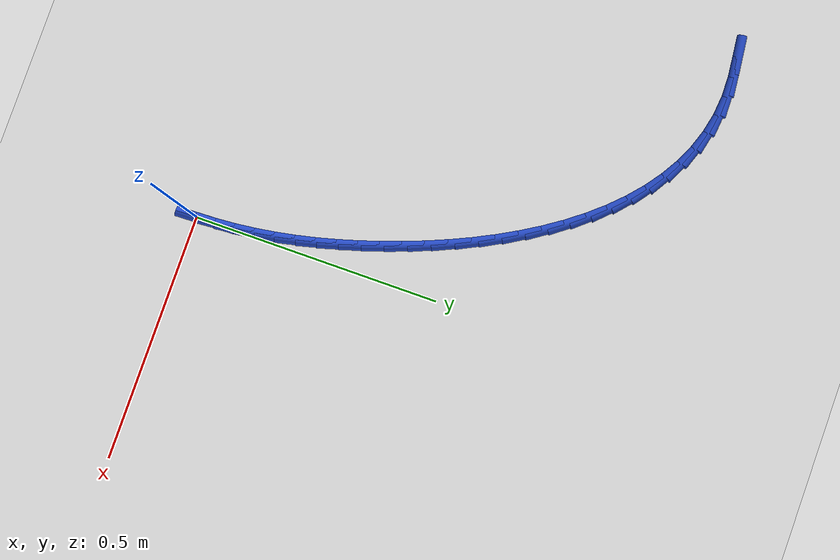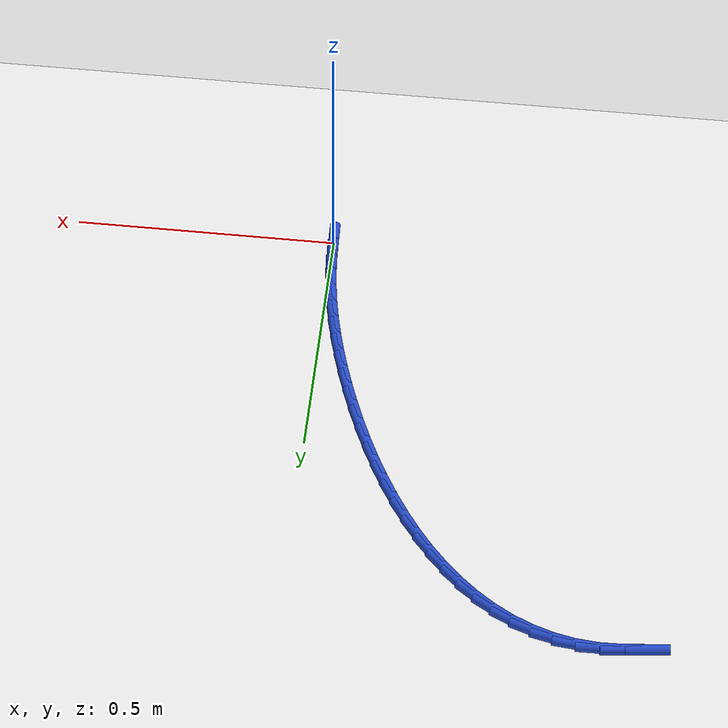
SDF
<sdf version="1.6">
 <world name="default">
  <model name="ground_plane">
   <static>1</static>
   <link name="link">
    <collision name="collision">
     <geometry><plane><normal>0 0 1</normal><size>100 100</size></plane></geometry>
     <surface><friction><ode><mu>100</mu><mu2>50</mu2></ode></friction></surface>
    </collision>
    <visual name="visual">
     <cast_shadows>0</cast_shadows>
     <geometry><plane><normal>0 0 1</normal><size>100 100</size></plane></geometry>
     <material>
      <script><uri>file://media/materials/scripts/gazebo.material</uri><name>Gazebo/WhiteGlow</name></script>
     </material>
    </visual>
   </link>
  </model>
  <model name="line">
   <link name="link_0">
    <pose>1.3010426069826053e-17 5.551115123125783e-17 0.01 0 1.57 -1.5370923485594425</pose>
    <collision name="collision">
     <geometry><cylinder><radius>0.01</radius><length>0.08</length></cylinder></geometry>
    </collision>
    <visual name="visual">
     <material>
      <script><name>Gazebo/Blue</name><uri>file://media/materials/scripts/gazebo.material</uri></script>
     </material>
     <geometry><cylinder><radius>0.01</radius><length>0.08</length></cylinder></geometry>
    </visual>
   </link>
   <link name="link_1">
    <pose>-0.0013624470893869027 0.0404086172412097 0.01 0 1.57 -1.4985749646381814</pose>
    <collision name="collision">
     <geometry><cylinder><radius>0.01</radius><length>0.08</length></cylinder></geometry>
    </collision>
    <visual name="visual">
     <material>
      <script><name>Gazebo/Blue</name><uri>file://media/materials/scripts/gazebo.material</uri></script>
     </material>
     <geometry><cylinder><radius>0.01</radius><length>0.08</length></cylinder></geometry>
    </visual>
   </link>
   <link name="link_2">
    <pose>-0.004257589821566019 0.08042596500010882 0.01 0 1.57 -1.4602163294073707</pose>
    <collision name="collision">
     <geometry><cylinder><radius>0.01</radius><length>0.08</length></cylinder></geometry>
    </collision>
    <visual name="visual">
     <material>
      <script><name>Gazebo/Blue</name><uri>file://media/materials/scripts/gazebo.material</uri></script>
     </material>
     <geometry><cylinder><radius>0.01</radius><length>0.08</length></cylinder></geometry>
    </visual>
   </link>
   <link name="link_3">
    <pose>-0.00867618931539603 0.12022136002537331 0.01 0 1.57 -1.4226101593895641</pose>
    <collision name="collision">
     <geometry><cylinder><radius>0.01</radius><length>0.08</length></cylinder></geometry>
    </collision>
    <visual name="visual">
     <material>
      <script><name>Gazebo/Blue</name><uri>file://media/materials/scripts/gazebo.material</uri></script>
     </material>
     <geometry><cylinder><radius>0.01</radius><length>0.08</length></cylinder></geometry>
    </visual>
   </link>
   <link name="link_4">
    <pose>-0.014609006689735603 0.15996411906567878 0.01 0 1.57 -1.38631734847195</pose>
    <collision name="collision">
     <geometry><cylinder><radius>0.01</radius><length>0.08</length></cylinder></geometry>
    </collision>
    <visual name="visual">
     <material>
      <script><name>Gazebo/Blue</name><uri>file://media/materials/scripts/gazebo.material</uri></script>
     </material>
     <geometry><cylinder><radius>0.01</radius><length>0.08</length></cylinder></geometry>
    </visual>
   </link>
   <link name="link_5">
    <pose>-0.022046803063443435 0.19982355886970118 0.01 0 1.57 -1.3518347627467244</pose>
    <collision name="collision">
     <geometry><cylinder><radius>0.01</radius><length>0.08</length></cylinder></geometry>
    </collision>
    <visual name="visual">
     <material>
      <script><name>Gazebo/Blue</name><uri>file://media/materials/scripts/gazebo.material</uri></script>
     </material>
     <geometry><cylinder><radius>0.01</radius><length>0.08</length></cylinder></geometry>
    </visual>
   </link>
   <link name="link_6">
    <pose>-0.030980339555378204 0.2399689961861161 0.01 0 1.57 -1.3195720538327067</pose>
    <collision name="collision">
     <geometry><cylinder><radius>0.01</radius><length>0.08</length></cylinder></geometry>
    </collision>
    <visual name="visual">
     <material>
      <script><name>Gazebo/Blue</name><uri>file://media/materials/scripts/gazebo.material</uri></script>
     </material>
     <geometry><cylinder><radius>0.01</radius><length>0.08</length></cylinder></geometry>
    </visual>
   </link>
   <link name="link_7">
    <pose>-0.04140037728439858 0.28056974776359944 0.01 0 1.57 -1.2898385142903392</pose>
    <collision name="collision">
     <geometry><cylinder><radius>0.01</radius><length>0.08</length></cylinder></geometry>
    </collision>
    <visual name="visual">
     <material>
      <script><name>Gazebo/Blue</name><uri>file://media/materials/scripts/gazebo.material</uri></script>
     </material>
     <geometry><cylinder><radius>0.01</radius><length>0.08</length></cylinder></geometry>
    </visual>
   </link>
   <link name="link_8">
    <pose>-0.05329767736936328 0.32179513035082685 0.01 0 1.57 -1.262341019789148</pose>
    <collision name="collision">
     <geometry><cylinder><radius>0.01</radius><length>0.08</length></cylinder></geometry>
    </collision>
    <visual name="visual">
     <material>
      <script><name>Gazebo/Blue</name><uri>file://media/materials/scripts/gazebo.material</uri></script>
     </material>
     <geometry><cylinder><radius>0.01</radius><length>0.08</length></cylinder></geometry>
    </visual>
   </link>
   <link name="link_9">
    <pose>-0.06666568605233641 0.3637504140920044 0.01 0 1.57 -1.234554410372701</pose>
    <collision name="collision">
     <geometry><cylinder><radius>0.01</radius><length>0.08</length></cylinder></geometry>
    </collision>
    <visual name="visual">
     <material>
      <script><name>Gazebo/Blue</name><uri>file://media/materials/scripts/gazebo.material</uri></script>
     </material>
     <geometry><cylinder><radius>0.01</radius><length>0.08</length></cylinder></geometry>
    </visual>
   </link>
   <link name="link_10">
    <pose>-0.08151109889715967 0.4062248411480968 0.01 0 1.57 -1.205336084382853</pose>
    <collision name="collision">
     <geometry><cylinder><radius>0.01</radius><length>0.08</length></cylinder></geometry>
    </collision>
    <visual name="visual">
     <material>
      <script><name>Gazebo/Blue</name><uri>file://media/materials/scripts/gazebo.material</uri></script>
     </material>
     <geometry><cylinder><radius>0.01</radius><length>0.08</length></cylinder></geometry>
    </visual>
   </link>
   <link name="link_11">
    <pose>-0.09784469095491612 0.44891034816155284 0.01 0 1.57 -1.1742590518513734</pose>
    <collision name="collision">
     <geometry><cylinder><radius>0.01</radius><length>0.08</length></cylinder></geometry>
    </collision>
    <visual name="visual">
     <material>
      <script><name>Gazebo/Blue</name><uri>file://media/materials/scripts/gazebo.material</uri></script>
     </material>
     <geometry><cylinder><radius>0.01</radius><length>0.08</length></cylinder></geometry>
    </visual>
   </link>
   <link name="link_12">
    <pose>-0.11567723841007929 0.4914988447407492 0.01 0 1.57 -1.1408729727830687</pose>
    <collision name="collision">
     <geometry><cylinder><radius>0.01</radius><length>0.08</length></cylinder></geometry>
    </collision>
    <visual name="visual">
     <material>
      <script><name>Gazebo/Blue</name><uri>file://media/materials/scripts/gazebo.material</uri></script>
     </material>
     <geometry><cylinder><radius>0.01</radius><length>0.08</length></cylinder></geometry>
    </visual>
   </link>
   <link name="link_13">
    <pose>-0.13501951744712282 0.5336822404940627 0.01 0 1.57 -1.1046885955054375</pose>
    <collision name="collision">
     <geometry><cylinder><radius>0.01</radius><length>0.08</length></cylinder></geometry>
    </collision>
    <visual name="visual">
     <material>
      <script><name>Gazebo/Blue</name><uri>file://media/materials/scripts/gazebo.material</uri></script>
     </material>
     <geometry><cylinder><radius>0.01</radius><length>0.08</length></cylinder></geometry>
    </visual>
   </link>
   <link name="link_14">
    <pose>-0.15588230425052008 0.5751524450298697 0.01 0 1.57 -1.0651641285247224</pose>
    <collision name="collision">
     <geometry><cylinder><radius>0.01</radius><length>0.08</length></cylinder></geometry>
    </collision>
    <visual name="visual">
     <material>
      <script><name>Gazebo/Blue</name><uri>file://media/materials/scripts/gazebo.material</uri></script>
     </material>
     <geometry><cylinder><radius>0.01</radius><length>0.08</length></cylinder></geometry>
    </visual>
   </link>
   <link name="link_15">
    <pose>-0.1782763750047448 0.6156013679565474 0.01 0 1.57 -1.0216936180983174</pose>
    <collision name="collision">
     <geometry><cylinder><radius>0.01</radius><length>0.08</length></cylinder></geometry>
    </collision>
    <visual name="visual">
     <material>
      <script><name>Gazebo/Blue</name><uri>file://media/materials/scripts/gazebo.material</uri></script>
     </material>
     <geometry><cylinder><radius>0.01</radius><length>0.08</length></cylinder></geometry>
    </visual>
   </link>
   <link name="link_16">
    <pose>-0.20221250589427053 0.6547209188824723 0.01 0 1.57 -0.9735987434966186</pose>
    <collision name="collision">
     <geometry><cylinder><radius>0.01</radius><length>0.08</length></cylinder></geometry>
    </collision>
    <visual name="visual">
     <material>
      <script><name>Gazebo/Blue</name><uri>file://media/materials/scripts/gazebo.material</uri></script>
     </material>
     <geometry><cylinder><radius>0.01</radius><length>0.08</length></cylinder></geometry>
    </visual>
   </link>
   <link name="link_17">
    <pose>-0.2277014731035708 0.6922030074160211 0.01 0 1.57 -0.9201270300878676</pose>
    <collision name="collision">
     <geometry><cylinder><radius>0.01</radius><length>0.08</length></cylinder></geometry>
    </collision>
    <visual name="visual">
     <material>
      <script><name>Gazebo/Blue</name><uri>file://media/materials/scripts/gazebo.material</uri></script>
     </material>
     <geometry><cylinder><radius>0.01</radius><length>0.08</length></cylinder></geometry>
    </visual>
   </link>
   <link name="link_18">
    <pose>-0.25475405281711916 0.7277395431655707 0.01 0 1.57 -0.8604617501178689</pose>
    <collision name="collision">
     <geometry><cylinder><radius>0.01</radius><length>0.08</length></cylinder></geometry>
    </collision>
    <visual name="visual">
     <material>
      <script><name>Gazebo/Blue</name><uri>file://media/materials/scripts/gazebo.material</uri></script>
     </material>
     <geometry><cylinder><radius>0.01</radius><length>0.08</length></cylinder></geometry>
    </visual>
   </link>
   <link name="link_19">
    <pose>-0.28338102121938913 0.7610224357394975 0.01 0 1.57 -0.7937517886758415</pose>
    <collision name="collision">
     <geometry><cylinder><radius>0.01</radius><length>0.08</length></cylinder></geometry>
    </collision>
    <visual name="visual">
     <material>
      <script><name>Gazebo/Blue</name><uri>file://media/materials/scripts/gazebo.material</uri></script>
     </material>
     <geometry><cylinder><radius>0.01</radius><length>0.08</length></cylinder></geometry>
    </visual>
   </link>
   <link name="link_20">
    <pose>-0.3135931544948544 0.7917435947461786 0.01 0 1.57 -0.7191730166057886</pose>
    <collision name="collision">
     <geometry><cylinder><radius>0.01</radius><length>0.08</length></cylinder></geometry>
    </collision>
    <visual name="visual">
     <material>
      <script><name>Gazebo/Blue</name><uri>file://media/materials/scripts/gazebo.material</uri></script>
     </material>
     <geometry><cylinder><radius>0.01</radius><length>0.08</length></cylinder></geometry>
    </visual>
   </link>
   <link name="link_21">
    <pose>-0.34540122882798846 0.8195949297939904 0.01 0 1.57 -0.6360344900183127</pose>
    <collision name="collision">
     <geometry><cylinder><radius>0.01</radius><length>0.08</length></cylinder></geometry>
    </collision>
    <visual name="visual">
     <material>
      <script><name>Gazebo/Blue</name><uri>file://media/materials/scripts/gazebo.material</uri></script>
     </material>
     <geometry><cylinder><radius>0.01</radius><length>0.08</length></cylinder></geometry>
    </visual>
   </link>
   <link name="link_22">
    <pose>-0.3788160204032648 0.8442683504913097 0.01 0 1.57 -0.5439391399053539</pose>
    <collision name="collision">
     <geometry><cylinder><radius>0.01</radius><length>0.08</length></cylinder></geometry>
    </collision>
    <visual name="visual">
     <material>
      <script><name>Gazebo/Blue</name><uri>file://media/materials/scripts/gazebo.material</uri></script>
     </material>
     <geometry><cylinder><radius>0.01</radius><length>0.08</length></cylinder></geometry>
    </visual>
   </link>
   <link name="link_23">
    <pose>-0.41384830540515705 0.8654557664465133 0.01 0 1.57 -0.4429932710964172</pose>
    <collision name="collision">
     <geometry><cylinder><radius>0.01</radius><length>0.08</length></cylinder></geometry>
    </collision>
    <visual name="visual">
     <material>
      <script><name>Gazebo/Blue</name><uri>file://media/materials/scripts/gazebo.material</uri></script>
     </material>
     <geometry><cylinder><radius>0.01</radius><length>0.08</length></cylinder></geometry>
    </visual>
   </link>
   <link name="link_24">
    <pose>-0.45050886001813883 0.882849087267978 0.01 0 1.57 -0.33402707513901675</pose>
    <collision name="collision">
     <geometry><cylinder><radius>0.01</radius><length>0.08</length></cylinder></geometry>
    </collision>
    <visual name="visual">
     <material>
      <script><name>Gazebo/Blue</name><uri>file://media/materials/scripts/gazebo.material</uri></script>
     </material>
     <geometry><cylinder><radius>0.01</radius><length>0.08</length></cylinder></geometry>
    </visual>
   </link>
   <link name="link_25">
    <pose>-0.4888084604266835 0.8961402225640802 0.01 0 1.57 -0.2187455139513072</pose>
    <collision name="collision">
     <geometry><cylinder><radius>0.01</radius><length>0.08</length></cylinder></geometry>
    </collision>
    <visual name="visual">
     <material>
      <script><name>Gazebo/Blue</name><uri>file://media/materials/scripts/gazebo.material</uri></script>
     </material>
     <geometry><cylinder><radius>0.01</radius><length>0.08</length></cylinder></geometry>
    </visual>
   </link>
   <link name="link_26">
    <pose>-0.528757882815265 0.9050210819431972 0.01 0 1.57 -0.09970413066238601</pose>
    <collision name="collision">
     <geometry><cylinder><radius>0.01</radius><length>0.08</length></cylinder></geometry>
    </collision>
    <visual name="visual">
     <material>
      <script><name>Gazebo/Blue</name><uri>file://media/materials/scripts/gazebo.material</uri></script>
     </material>
     <geometry><cylinder><radius>0.01</radius><length>0.08</length></cylinder></geometry>
    </visual>
   </link>
   <link name="link_27">
    <pose>-0.5703679033683563 0.909183575013705 0.01 0 1.57 0.019249252064882278</pose>
    <collision name="collision">
     <geometry><cylinder><radius>0.01</radius><length>0.08</length></cylinder></geometry>
    </collision>
    <visual name="visual">
     <material>
      <script><name>Gazebo/Blue</name><uri>file://media/materials/scripts/gazebo.material</uri></script>
     </material>
     <geometry><cylinder><radius>0.01</radius><length>0.08</length></cylinder></geometry>
    </visual>
   </link>
   <link name="link_28">
    <pose>-0.6136354272823243 0.9083506046559225 0.01 0 1.57 0.10321474653686463</pose>
    <collision name="collision">
     <geometry><cylinder><radius>0.01</radius><length>0.08</length></cylinder></geometry>
    </collision>
    <visual name="visual">
     <material>
      <script><name>Gazebo/Blue</name><uri>file://media/materials/scripts/gazebo.material</uri></script>
     </material>
     <geometry><cylinder><radius>0.01</radius><length>0.08</length></cylinder></geometry>
    </visual>
   </link>
   <link name="link_29">
    <pose>-0.6578757467527033 0.9037680666999813 0.01 0 1.57 0.11206720125371548</pose>
    <collision name="collision">
     <geometry><cylinder><radius>0.01</radius><length>0.08</length></cylinder></geometry>
    </collision>
    <visual name="visual">
     <material>
      <script><name>Gazebo/Blue</name><uri>file://media/materials/scripts/gazebo.material</uri></script>
     </material>
     <geometry><cylinder><radius>0.01</radius><length>0.08</length></cylinder></geometry>
    </visual>
   </link>
   <link name="link_190">
    <pose>1.734723475976807e-17 1.1796119636642288e-16 0.01 0 1.57 -1.5374090764143016</pose>
    <collision name="collision">
     <geometry><cylinder><radius>0.01</radius><length>0.08</length></cylinder></geometry>
    </collision>
    <visual name="visual">
     <material>
      <script><name>Gazebo/Blue</name><uri>file://media/materials/scripts/gazebo.material</uri></script>
     </material>
     <geometry><cylinder><radius>0.01</radius><length>0.08</length></cylinder></geometry>
    </visual>
   </link>
   <link name="link_191">
    <pose>-0.0013473139552415431 0.0403391498824958 0.01 0 1.57 -1.5374090764143016</pose>
    <collision name="collision">
     <geometry><cylinder><radius>0.01</radius><length>0.08</length></cylinder></geometry>
    </collision>
    <visual name="visual">
     <material>
      <script><name>Gazebo/Blue</name><uri>file://media/materials/scripts/gazebo.material</uri></script>
     </material>
     <geometry><cylinder><radius>0.01</radius><length>0.08</length></cylinder></geometry>
    </visual>
   </link>
  </model>
 </world>
</sdf>
